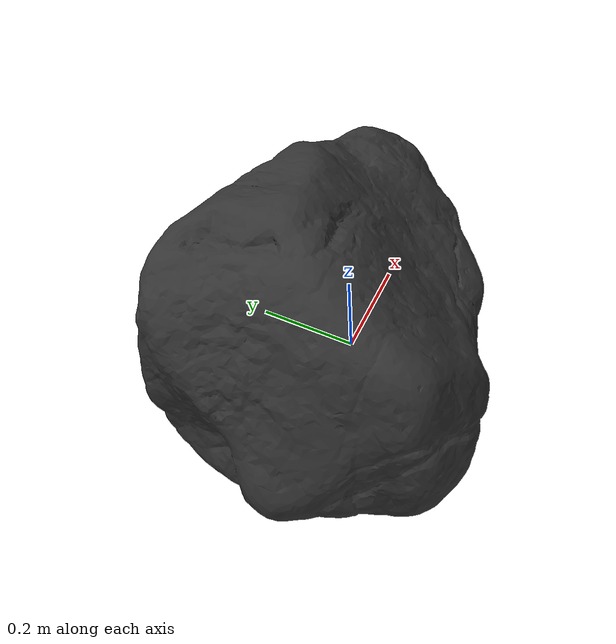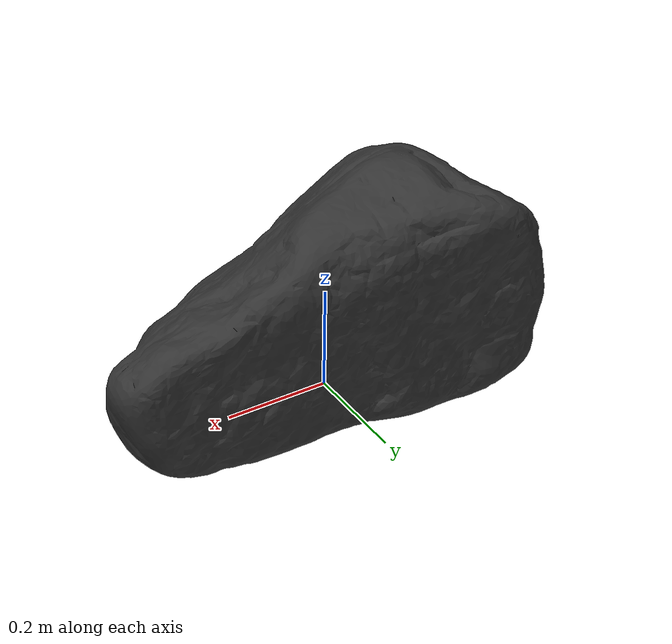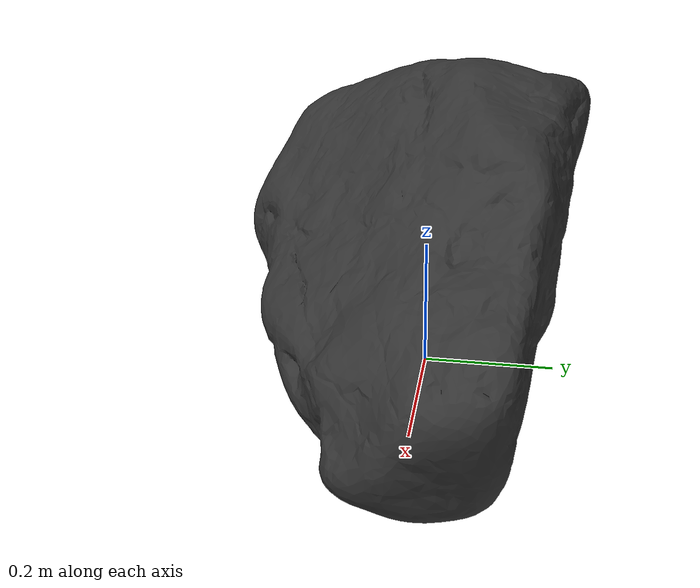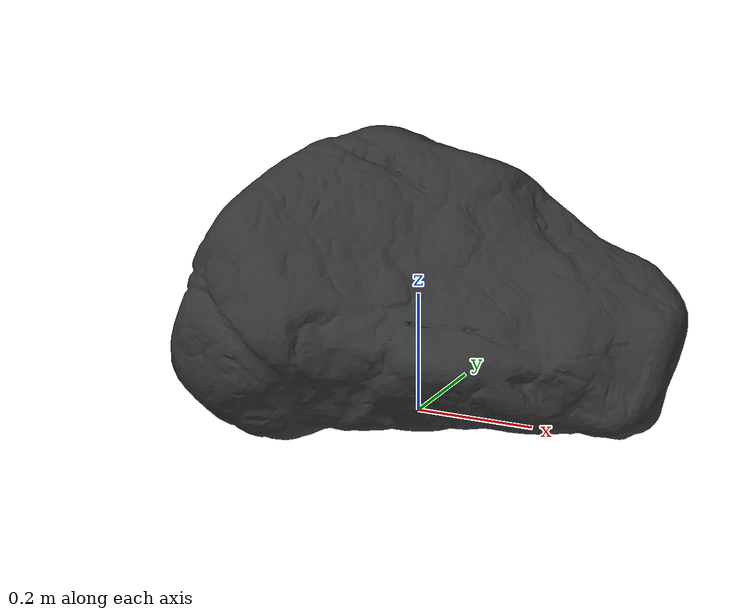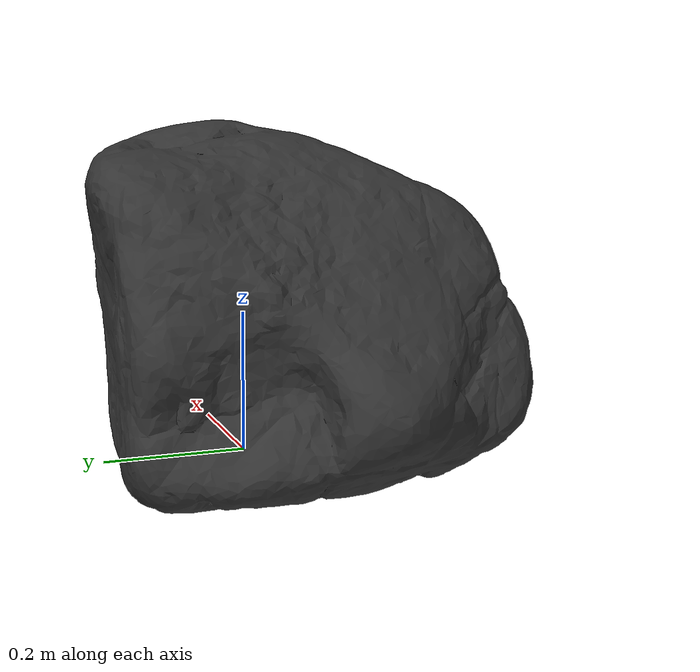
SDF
<?xml version="1.0" ?>
<sdf version='1.6'>
  <model name="qr_rock3">

    <static>true</static>

    <link name="qr_rock3_link">

    <visual name="link0_visual">
        <geometry>
          <mesh>
            <uri>package://lunar_local_planning/worlds/models/plane_rocks/qr_rock3/meshes/qr_rock3.dae</uri>
            <scale>3 3 3</scale>
          </mesh>
        </geometry>
        <material>
          <diffuse>0.2 0.2 0.2</diffuse>
          <specular>0.2 0.2 0.2</specular>
          <pbr>
            <metal>
              <albedo_map>package://lunar_local_planning/worlds/models/plane_rocks/qr_rock3/meshes/textures/qr_rock3_diffuse.png</albedo_map>
            </metal>
          </pbr>
        </material>
      </visual>

      <collision name="qr_rock3_colission">
        <geometry>
          <mesh>
            <uri>package://lunar_local_planning/worlds/models/plane_rocks/qr_rock3/meshes/qr_rock3.dae</uri>
            <scale>3 3 3</scale>
          </mesh>
        </geometry>
        <max_contacts>10</max_contacts>
        <surface>
          <bounce/>
          <friction>
            <ode/>
          </friction>
          <contact>
            <ode/>
          </contact>
        </surface>
      </collision>

    </link>

  </model>
</sdf>
